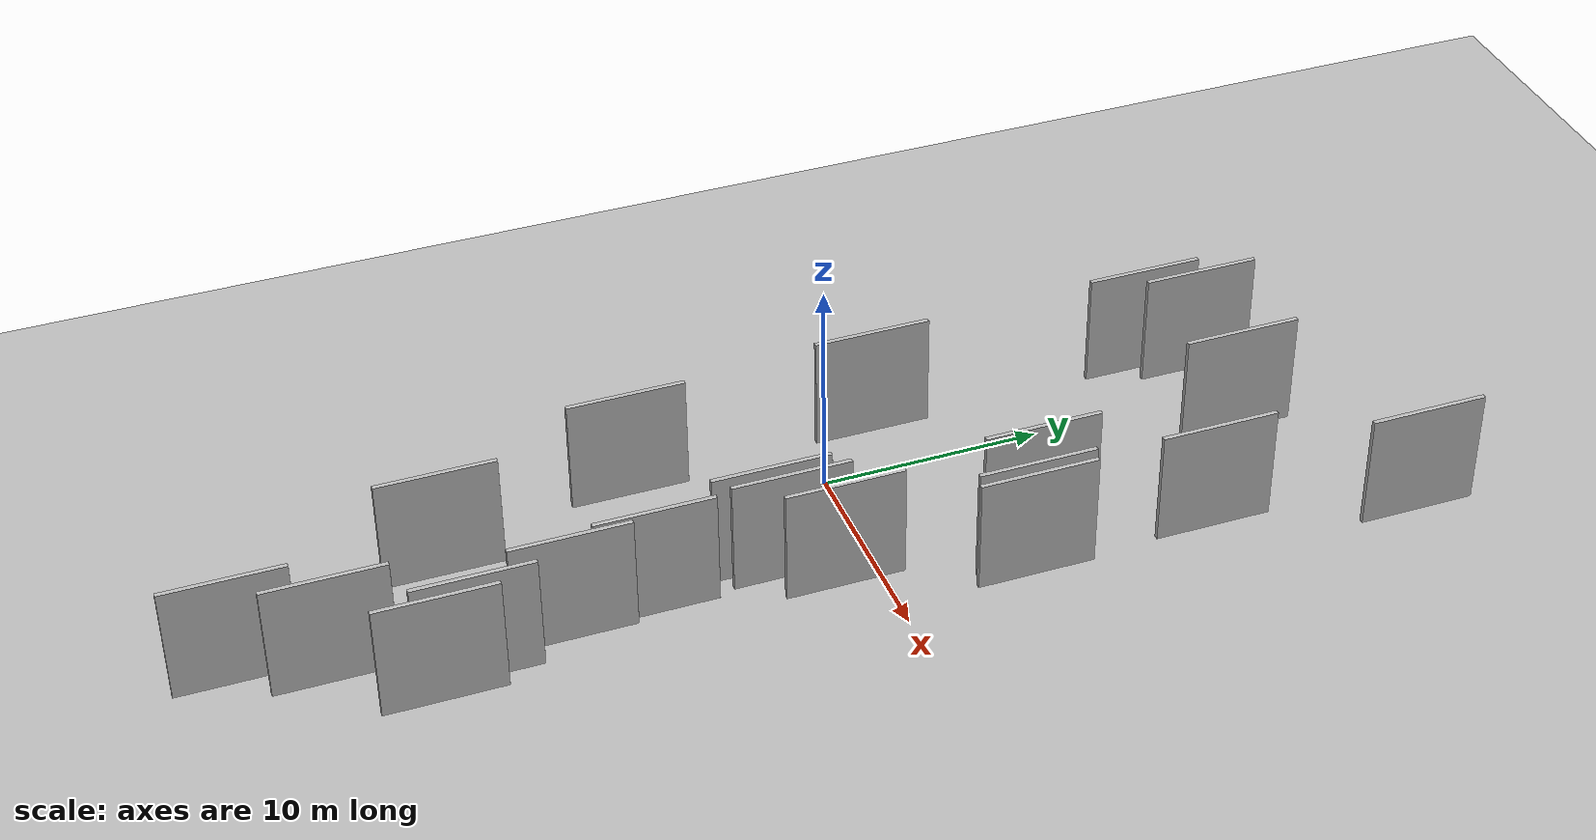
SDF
<?xml version="1.0" encoding="utf-8"?>

<sdf version="1.6">

   <world name="default">

      <gui fullscreen="0">

         <camera name="user_camera">

            <pose>-15 0 4.57585 0 0 0</pose>

            <view_controller>orbit</view_controller>

         </camera>

      </gui>

      <scene>

         <sky>

           <clouds>

             <speed>12</speed>

           </clouds>

         </sky>

         <ambient>0.4 0.4 0.4 1</ambient>

         <background>0.7 0.7 0.7 1</background>

         <shadows>1</shadows>

      </scene>

      <gravity>0 0 -9.8066</gravity>

      <magnetic_field>6e-06 2.3e-05 -4.2e-05</magnetic_field>

      <physics default="0" name="default_physics" type="ode">

         <ode>

            <solver>

               <type>quick</type>

               <iters>10</iters>

               <sor>1.0</sor>

               <use_dynamic_moi_rescaling>0</use_dynamic_moi_rescaling>

            </solver>

            <constraints>

               <cfm>0</cfm>

               <erp>0.2</erp>

               <contact_max_correcting_vel>100</contact_max_correcting_vel>

               <contact_surface_layer>0.001</contact_surface_layer>

            </constraints>

         </ode>

         <max_step_size>0.004</max_step_size>

         <real_time_factor>1</real_time_factor>

         <real_time_update_rate>250</real_time_update_rate>

      </physics>

      <light name="sun" type="directional">

         <cast_shadows>1</cast_shadows>

         <pose>0 0 10 0 0 0</pose>

         <diffuse>0.8 0.8 0.8 1</diffuse>

         <specular>0.2 0.2 0.2 1</specular>

         <attenuation>

            <range>1000</range>

            <constant>0.9</constant>

            <linear>0.01</linear>

            <quadratic>0.001</quadratic>

         </attenuation>

         <direction>-0.5 0.1 -0.9</direction>

      </light>

      <include>

         <name>ground_plane_1</name>

         <uri>model://HANNAS_ground_plane</uri>

         <pose>0 0 0  0 0 0</pose>

      </include>

      <include>

         <name>ground_plane_2</name>

         <uri>model://HANNAS_ground_plane</uri>

         <pose>100 0 0  0 0 0</pose>

      </include>

      <model name="HANNAS_wall_1">

         <static>1</static>

         <pose frame="">6.0862 -18.3670 5.0 0.000000 0.000000 1.570796</pose>

         <link name="link">

            <pose frame="">0 0 2.50 0 0 0</pose>

            <collision name="collision">

               <geometry>

                  <box>

                     <size>5.00 0.2 5.00</size>

                  </box>

               </geometry>

               <max_contacts>10</max_contacts>

               <surface>

                  <contact>

                     <ode/>

                  </contact>

                  <bounce/>

                  <friction>

                     <torsional>

                        <ode/>

                     </torsional>

                     <ode/>

                  </friction>

               </surface>

            </collision>

            <visual name="visual">

               <cast_shadows>0</cast_shadows>

               <geometry>

                  <box>

                     <size>5.00 0.2 5.00</size>

                  </box>

               </geometry>

               <material>

                  <script>

                     <uri>model://HANNAS_wall/materials/scripts</uri>

                     <uri>model://HANNAS_wall/materials/textures</uri>

                     <name>vrc/HANNAS_wall</name>

                  </script>

               </material>

            </visual>

            <self_collide>0</self_collide>

            <enable_wind>0</enable_wind>

            <kinematic>0</kinematic>

         </link>

      </model>

      <model name="HANNAS_wall_2">

         <static>1</static>

         <pose frame="">3.2298 0.9147 5.0 0.000000 0.000000 1.570796</pose>

         <link name="link">

            <pose frame="">0 0 2.50 0 0 0</pose>

            <collision name="collision">

               <geometry>

                  <box>

                     <size>5.00 0.2 5.00</size>

                  </box>

               </geometry>

               <max_contacts>10</max_contacts>

               <surface>

                  <contact>

                     <ode/>

                  </contact>

                  <bounce/>

                  <friction>

                     <torsional>

                        <ode/>

                     </torsional>

                     <ode/>

                  </friction>

               </surface>

            </collision>

            <visual name="visual">

               <cast_shadows>0</cast_shadows>

               <geometry>

                  <box>

                     <size>5.00 0.2 5.00</size>

                  </box>

               </geometry>

               <material>

                  <script>

                     <uri>model://HANNAS_wall/materials/scripts</uri>

                     <uri>model://HANNAS_wall/materials/textures</uri>

                     <name>vrc/HANNAS_wall</name>

                  </script>

               </material>

            </visual>

            <self_collide>0</self_collide>

            <enable_wind>0</enable_wind>

            <kinematic>0</kinematic>

         </link>

      </model>

      <model name="HANNAS_wall_3">

         <static>1</static>

         <pose frame="">10.7803 -23.8710 5.0 0.000000 0.000000 1.570796</pose>

         <link name="link">

            <pose frame="">0 0 2.50 0 0 0</pose>

            <collision name="collision">

               <geometry>

                  <box>

                     <size>5.00 0.2 5.00</size>

                  </box>

               </geometry>

               <max_contacts>10</max_contacts>

               <surface>

                  <contact>

                     <ode/>

                  </contact>

                  <bounce/>

                  <friction>

                     <torsional>

                        <ode/>

                     </torsional>

                     <ode/>

                  </friction>

               </surface>

            </collision>

            <visual name="visual">

               <cast_shadows>0</cast_shadows>

               <geometry>

                  <box>

                     <size>5.00 0.2 5.00</size>

                  </box>

               </geometry>

               <material>

                  <script>

                     <uri>model://HANNAS_wall/materials/scripts</uri>

                     <uri>model://HANNAS_wall/materials/textures</uri>

                     <name>vrc/HANNAS_wall</name>

                  </script>

               </material>

            </visual>

            <self_collide>0</self_collide>

            <enable_wind>0</enable_wind>

            <kinematic>0</kinematic>

         </link>

      </model>

      <model name="HANNAS_wall_4">

         <static>1</static>

         <pose frame="">8.5567 15.2434 5.0 0.000000 0.000000 1.570796</pose>

         <link name="link">

            <pose frame="">0 0 2.50 0 0 0</pose>

            <collision name="collision">

               <geometry>

                  <box>

                     <size>5.00 0.2 5.00</size>

                  </box>

               </geometry>

               <max_contacts>10</max_contacts>

               <surface>

                  <contact>

                     <ode/>

                  </contact>

                  <bounce/>

                  <friction>

                     <torsional>

                        <ode/>

                     </torsional>

                     <ode/>

                  </friction>

               </surface>

            </collision>

            <visual name="visual">

               <cast_shadows>0</cast_shadows>

               <geometry>

                  <box>

                     <size>5.00 0.2 5.00</size>

                  </box>

               </geometry>

               <material>

                  <script>

                     <uri>model://HANNAS_wall/materials/scripts</uri>

                     <uri>model://HANNAS_wall/materials/textures</uri>

                     <name>vrc/HANNAS_wall</name>

                  </script>

               </material>

            </visual>

            <self_collide>0</self_collide>

            <enable_wind>0</enable_wind>

            <kinematic>0</kinematic>

         </link>

      </model>

      <model name="HANNAS_wall_5">

         <static>1</static>

         <pose frame="">11.0155 -5.4281 5.0 0.000000 0.000000 1.570796</pose>

         <link name="link">

            <pose frame="">0 0 2.50 0 0 0</pose>

            <collision name="collision">

               <geometry>

                  <box>

                     <size>5.00 0.2 5.00</size>

                  </box>

               </geometry>

               <max_contacts>10</max_contacts>

               <surface>

                  <contact>

                     <ode/>

                  </contact>

                  <bounce/>

                  <friction>

                     <torsional>

                        <ode/>

                     </torsional>

                     <ode/>

                  </friction>

               </surface>

            </collision>

            <visual name="visual">

               <cast_shadows>0</cast_shadows>

               <geometry>

                  <box>

                     <size>5.00 0.2 5.00</size>

                  </box>

               </geometry>

               <material>

                  <script>

                     <uri>model://HANNAS_wall/materials/scripts</uri>

                     <uri>model://HANNAS_wall/materials/textures</uri>

                     <name>vrc/HANNAS_wall</name>

                  </script>

               </material>

            </visual>

            <self_collide>0</self_collide>

            <enable_wind>0</enable_wind>

            <kinematic>0</kinematic>

         </link>

      </model>

      <model name="HANNAS_wall_6">

         <static>1</static>

         <pose frame="">10.3265 -6.0208 5.0 0.000000 0.000000 1.570796</pose>

         <link name="link">

            <pose frame="">0 0 2.50 0 0 0</pose>

            <collision name="collision">

               <geometry>

                  <box>

                     <size>5.00 0.2 5.00</size>

                  </box>

               </geometry>

               <max_contacts>10</max_contacts>

               <surface>

                  <contact>

                     <ode/>

                  </contact>

                  <bounce/>

                  <friction>

                     <torsional>

                        <ode/>

                     </torsional>

                     <ode/>

                  </friction>

               </surface>

            </collision>

            <visual name="visual">

               <cast_shadows>0</cast_shadows>

               <geometry>

                  <box>

                     <size>5.00 0.2 5.00</size>

                  </box>

               </geometry>

               <material>

                  <script>

                     <uri>model://HANNAS_wall/materials/scripts</uri>

                     <uri>model://HANNAS_wall/materials/textures</uri>

                     <name>vrc/HANNAS_wall</name>

                  </script>

               </material>

            </visual>

            <self_collide>0</self_collide>

            <enable_wind>0</enable_wind>

            <kinematic>0</kinematic>

         </link>

      </model>

      <model name="HANNAS_wall_7">

         <static>1</static>

         <pose frame="">3.9384 15.5971 5.0 0.000000 0.000000 1.570796</pose>

         <link name="link">

            <pose frame="">0 0 2.50 0 0 0</pose>

            <collision name="collision">

               <geometry>

                  <box>

                     <size>5.00 0.2 5.00</size>

                  </box>

               </geometry>

               <max_contacts>10</max_contacts>

               <surface>

                  <contact>

                     <ode/>

                  </contact>

                  <bounce/>

                  <friction>

                     <torsional>

                        <ode/>

                     </torsional>

                     <ode/>

                  </friction>

               </surface>

            </collision>

            <visual name="visual">

               <cast_shadows>0</cast_shadows>

               <geometry>

                  <box>

                     <size>5.00 0.2 5.00</size>

                  </box>

               </geometry>

               <material>

                  <script>

                     <uri>model://HANNAS_wall/materials/scripts</uri>

                     <uri>model://HANNAS_wall/materials/textures</uri>

                     <name>vrc/HANNAS_wall</name>

                  </script>

               </material>

            </visual>

            <self_collide>0</self_collide>

            <enable_wind>0</enable_wind>

            <kinematic>0</kinematic>

         </link>

      </model>

      <model name="HANNAS_wall_8">

         <static>1</static>

         <pose frame="">13.7003 3.8377 5.0 0.000000 0.000000 1.570796</pose>

         <link name="link">

            <pose frame="">0 0 2.50 0 0 0</pose>

            <collision name="collision">

               <geometry>

                  <box>

                     <size>5.00 0.2 5.00</size>

                  </box>

               </geometry>

               <max_contacts>10</max_contacts>

               <surface>

                  <contact>

                     <ode/>

                  </contact>

                  <bounce/>

                  <friction>

                     <torsional>

                        <ode/>

                     </torsional>

                     <ode/>

                  </friction>

               </surface>

            </collision>

            <visual name="visual">

               <cast_shadows>0</cast_shadows>

               <geometry>

                  <box>

                     <size>5.00 0.2 5.00</size>

                  </box>

               </geometry>

               <material>

                  <script>

                     <uri>model://HANNAS_wall/materials/scripts</uri>

                     <uri>model://HANNAS_wall/materials/textures</uri>

                     <name>vrc/HANNAS_wall</name>

                  </script>

               </material>

            </visual>

            <self_collide>0</self_collide>

            <enable_wind>0</enable_wind>

            <kinematic>0</kinematic>

         </link>

      </model>

      <model name="HANNAS_wall_9">

         <static>1</static>

         <pose frame="">11.6025 4.9767 5.0 0.000000 0.000000 1.570796</pose>

         <link name="link">

            <pose frame="">0 0 2.50 0 0 0</pose>

            <collision name="collision">

               <geometry>

                  <box>

                     <size>5.00 0.2 5.00</size>

                  </box>

               </geometry>

               <max_contacts>10</max_contacts>

               <surface>

                  <contact>

                     <ode/>

                  </contact>

                  <bounce/>

                  <friction>

                     <torsional>

                        <ode/>

                     </torsional>

                     <ode/>

                  </friction>

               </surface>

            </collision>

            <visual name="visual">

               <cast_shadows>0</cast_shadows>

               <geometry>

                  <box>

                     <size>5.00 0.2 5.00</size>

                  </box>

               </geometry>

               <material>

                  <script>

                     <uri>model://HANNAS_wall/materials/scripts</uri>

                     <uri>model://HANNAS_wall/materials/textures</uri>

                     <name>vrc/HANNAS_wall</name>

                  </script>

               </material>

            </visual>

            <self_collide>0</self_collide>

            <enable_wind>0</enable_wind>

            <kinematic>0</kinematic>

         </link>

      </model>

      <model name="HANNAS_wall_10">

         <static>1</static>

         <pose frame="">11.6328 -14.5725 5.0 0.000000 0.000000 1.570796</pose>

         <link name="link">

            <pose frame="">0 0 2.50 0 0 0</pose>

            <collision name="collision">

               <geometry>

                  <box>

                     <size>5.00 0.2 5.00</size>

                  </box>

               </geometry>

               <max_contacts>10</max_contacts>

               <surface>

                  <contact>

                     <ode/>

                  </contact>

                  <bounce/>

                  <friction>

                     <torsional>

                        <ode/>

                     </torsional>

                     <ode/>

                  </friction>

               </surface>

            </collision>

            <visual name="visual">

               <cast_shadows>0</cast_shadows>

               <geometry>

                  <box>

                     <size>5.00 0.2 5.00</size>

                  </box>

               </geometry>

               <material>

                  <script>

                     <uri>model://HANNAS_wall/materials/scripts</uri>

                     <uri>model://HANNAS_wall/materials/textures</uri>

                     <name>vrc/HANNAS_wall</name>

                  </script>

               </material>

            </visual>

            <self_collide>0</self_collide>

            <enable_wind>0</enable_wind>

            <kinematic>0</kinematic>

         </link>

      </model>

      <model name="HANNAS_wall_11">

         <static>1</static>

         <pose frame="">14.0752 11.5162 5.0 0.000000 0.000000 1.570796</pose>

         <link name="link">

            <pose frame="">0 0 2.50 0 0 0</pose>

            <collision name="collision">

               <geometry>

                  <box>

                     <size>5.00 0.2 5.00</size>

                  </box>

               </geometry>

               <max_contacts>10</max_contacts>

               <surface>

                  <contact>

                     <ode/>

                  </contact>

                  <bounce/>

                  <friction>

                     <torsional>

                        <ode/>

                     </torsional>

                     <ode/>

                  </friction>

               </surface>

            </collision>

            <visual name="visual">

               <cast_shadows>0</cast_shadows>

               <geometry>

                  <box>

                     <size>5.00 0.2 5.00</size>

                  </box>

               </geometry>

               <material>

                  <script>

                     <uri>model://HANNAS_wall/materials/scripts</uri>

                     <uri>model://HANNAS_wall/materials/textures</uri>

                     <name>vrc/HANNAS_wall</name>

                  </script>

               </material>

            </visual>

            <self_collide>0</self_collide>

            <enable_wind>0</enable_wind>

            <kinematic>0</kinematic>

         </link>

      </model>

      <model name="HANNAS_wall_12">

         <static>1</static>

         <pose frame="">13.3303 -20.2486 5.0 0.000000 0.000000 1.570796</pose>

         <link name="link">

            <pose frame="">0 0 2.50 0 0 0</pose>

            <collision name="collision">

               <geometry>

                  <box>

                     <size>5.00 0.2 5.00</size>

                  </box>

               </geometry>

               <max_contacts>10</max_contacts>

               <surface>

                  <contact>

                     <ode/>

                  </contact>

                  <bounce/>

                  <friction>

                     <torsional>

                        <ode/>

                     </torsional>

                     <ode/>

                  </friction>

               </surface>

            </collision>

            <visual name="visual">

               <cast_shadows>0</cast_shadows>

               <geometry>

                  <box>

                     <size>5.00 0.2 5.00</size>

                  </box>

               </geometry>

               <material>

                  <script>

                     <uri>model://HANNAS_wall/materials/scripts</uri>

                     <uri>model://HANNAS_wall/materials/textures</uri>

                     <name>vrc/HANNAS_wall</name>

                  </script>

               </material>

            </visual>

            <self_collide>0</self_collide>

            <enable_wind>0</enable_wind>

            <kinematic>0</kinematic>

         </link>

      </model>

      <model name="HANNAS_wall_13">

         <static>1</static>

         <pose frame="">3.0769 13.3570 5.0 0.000000 0.000000 1.570796</pose>

         <link name="link">

            <pose frame="">0 0 2.50 0 0 0</pose>

            <collision name="collision">

               <geometry>

                  <box>

                     <size>5.00 0.2 5.00</size>

                  </box>

               </geometry>

               <max_contacts>10</max_contacts>

               <surface>

                  <contact>

                     <ode/>

                  </contact>

                  <bounce/>

                  <friction>

                     <torsional>

                        <ode/>

                     </torsional>

                     <ode/>

                  </friction>

               </surface>

            </collision>

            <visual name="visual">

               <cast_shadows>0</cast_shadows>

               <geometry>

                  <box>

                     <size>5.00 0.2 5.00</size>

                  </box>

               </geometry>

               <material>

                  <script>

                     <uri>model://HANNAS_wall/materials/scripts</uri>

                     <uri>model://HANNAS_wall/materials/textures</uri>

                     <name>vrc/HANNAS_wall</name>

                  </script>

               </material>

            </visual>

            <self_collide>0</self_collide>

            <enable_wind>0</enable_wind>

            <kinematic>0</kinematic>

         </link>

      </model>

      <model name="HANNAS_wall_14">

         <static>1</static>

         <pose frame="">14.3510 3.6244 5.0 0.000000 0.000000 1.570796</pose>

         <link name="link">

            <pose frame="">0 0 2.50 0 0 0</pose>

            <collision name="collision">

               <geometry>

                  <box>

                     <size>5.00 0.2 5.00</size>

                  </box>

               </geometry>

               <max_contacts>10</max_contacts>

               <surface>

                  <contact>

                     <ode/>

                  </contact>

                  <bounce/>

                  <friction>

                     <torsional>

                        <ode/>

                     </torsional>

                     <ode/>

                  </friction>

               </surface>

            </collision>

            <visual name="visual">

               <cast_shadows>0</cast_shadows>

               <geometry>

                  <box>

                     <size>5.00 0.2 5.00</size>

                  </box>

               </geometry>

               <material>

                  <script>

                     <uri>model://HANNAS_wall/materials/scripts</uri>

                     <uri>model://HANNAS_wall/materials/textures</uri>

                     <name>vrc/HANNAS_wall</name>

                  </script>

               </material>

            </visual>

            <self_collide>0</self_collide>

            <enable_wind>0</enable_wind>

            <kinematic>0</kinematic>

         </link>

      </model>

      <model name="HANNAS_wall_15">

         <static>1</static>

         <pose frame="">3.7795 -9.9066 5.0 0.000000 0.000000 1.570796</pose>

         <link name="link">

            <pose frame="">0 0 2.50 0 0 0</pose>

            <collision name="collision">

               <geometry>

                  <box>

                     <size>5.00 0.2 5.00</size>

                  </box>

               </geometry>

               <max_contacts>10</max_contacts>

               <surface>

                  <contact>

                     <ode/>

                  </contact>

                  <bounce/>

                  <friction>

                     <torsional>

                        <ode/>

                     </torsional>

                     <ode/>

                  </friction>

               </surface>

            </collision>

            <visual name="visual">

               <cast_shadows>0</cast_shadows>

               <geometry>

                  <box>

                     <size>5.00 0.2 5.00</size>

                  </box>

               </geometry>

               <material>

                  <script>

                     <uri>model://HANNAS_wall/materials/scripts</uri>

                     <uri>model://HANNAS_wall/materials/textures</uri>

                     <name>vrc/HANNAS_wall</name>

                  </script>

               </material>

            </visual>

            <self_collide>0</self_collide>

            <enable_wind>0</enable_wind>

            <kinematic>0</kinematic>

         </link>

      </model>

      <model name="HANNAS_wall_16">

         <static>1</static>

         <pose frame="">16.0706 19.7544 5.0 0.000000 0.000000 1.570796</pose>

         <link name="link">

            <pose frame="">0 0 2.50 0 0 0</pose>

            <collision name="collision">

               <geometry>

                  <box>

                     <size>5.00 0.2 5.00</size>

                  </box>

               </geometry>

               <max_contacts>10</max_contacts>

               <surface>

                  <contact>

                     <ode/>

                  </contact>

                  <bounce/>

                  <friction>

                     <torsional>

                        <ode/>

                     </torsional>

                     <ode/>

                  </friction>

               </surface>

            </collision>

            <visual name="visual">

               <cast_shadows>0</cast_shadows>

               <geometry>

                  <box>

                     <size>5.00 0.2 5.00</size>

                  </box>

               </geometry>

               <material>

                  <script>

                     <uri>model://HANNAS_wall/materials/scripts</uri>

                     <uri>model://HANNAS_wall/materials/textures</uri>

                     <name>vrc/HANNAS_wall</name>

                  </script>

               </material>

            </visual>

            <self_collide>0</self_collide>

            <enable_wind>0</enable_wind>

            <kinematic>0</kinematic>

         </link>

      </model>

      <model name="HANNAS_wall_17">

         <static>1</static>

         <pose frame="">12.6148 -18.6347 5.0 0.000000 0.000000 1.570796</pose>

         <link name="link">

            <pose frame="">0 0 2.50 0 0 0</pose>

            <collision name="collision">

               <geometry>

                  <box>

                     <size>5.00 0.2 5.00</size>

                  </box>

               </geometry>

               <max_contacts>10</max_contacts>

               <surface>

                  <contact>

                     <ode/>

                  </contact>

                  <bounce/>

                  <friction>

                     <torsional>

                        <ode/>

                     </torsional>

                     <ode/>

                  </friction>

               </surface>

            </collision>

            <visual name="visual">

               <cast_shadows>0</cast_shadows>

               <geometry>

                  <box>

                     <size>5.00 0.2 5.00</size>

                  </box>

               </geometry>

               <material>

                  <script>

                     <uri>model://HANNAS_wall/materials/scripts</uri>

                     <uri>model://HANNAS_wall/materials/textures</uri>

                     <name>vrc/HANNAS_wall</name>

                  </script>

               </material>

            </visual>

            <self_collide>0</self_collide>

            <enable_wind>0</enable_wind>

            <kinematic>0</kinematic>

         </link>

      </model>

      <model name="HANNAS_wall_18">

         <static>1</static>

         <pose frame="">12.3109 -3.6896 5.0 0.000000 0.000000 1.570796</pose>

         <link name="link">

            <pose frame="">0 0 2.50 0 0 0</pose>

            <collision name="collision">

               <geometry>

                  <box>

                     <size>5.00 0.2 5.00</size>

                  </box>

               </geometry>

               <max_contacts>10</max_contacts>

               <surface>

                  <contact>

                     <ode/>

                  </contact>

                  <bounce/>

                  <friction>

                     <torsional>

                        <ode/>

                     </torsional>

                     <ode/>

                  </friction>

               </surface>

            </collision>

            <visual name="visual">

               <cast_shadows>0</cast_shadows>

               <geometry>

                  <box>

                     <size>5.00 0.2 5.00</size>

                  </box>

               </geometry>

               <material>

                  <script>

                     <uri>model://HANNAS_wall/materials/scripts</uri>

                     <uri>model://HANNAS_wall/materials/textures</uri>

                     <name>vrc/HANNAS_wall</name>

                  </script>

               </material>

            </visual>

            <self_collide>0</self_collide>

            <enable_wind>0</enable_wind>

            <kinematic>0</kinematic>

         </link>

      </model>

      <model name="HANNAS_wall_19">

         <static>1</static>

         <pose frame="">9.5389 -27.4185 5.0 0.000000 0.000000 1.570796</pose>

         <link name="link">

            <pose frame="">0 0 2.50 0 0 0</pose>

            <collision name="collision">

               <geometry>

                  <box>

                     <size>5.00 0.2 5.00</size>

                  </box>

               </geometry>

               <max_contacts>10</max_contacts>

               <surface>

                  <contact>

                     <ode/>

                  </contact>

                  <bounce/>

                  <friction>

                     <torsional>

                        <ode/>

                     </torsional>

                     <ode/>

                  </friction>

               </surface>

            </collision>

            <visual name="visual">

               <cast_shadows>0</cast_shadows>

               <geometry>

                  <box>

                     <size>5.00 0.2 5.00</size>

                  </box>

               </geometry>

               <material>

                  <script>

                     <uri>model://HANNAS_wall/materials/scripts</uri>

                     <uri>model://HANNAS_wall/materials/textures</uri>

                     <name>vrc/HANNAS_wall</name>

                  </script>

               </material>

            </visual>

            <self_collide>0</self_collide>

            <enable_wind>0</enable_wind>

            <kinematic>0</kinematic>

         </link>

      </model>

      <model name="HANNAS_wall_20">

         <static>1</static>

         <pose frame="">11.3097 -11.1087 5.0 0.000000 0.000000 1.570796</pose>

         <link name="link">

            <pose frame="">0 0 2.50 0 0 0</pose>

            <collision name="collision">

               <geometry>

                  <box>

                     <size>5.00 0.2 5.00</size>

                  </box>

               </geometry>

               <max_contacts>10</max_contacts>

               <surface>

                  <contact>

                     <ode/>

                  </contact>

                  <bounce/>

                  <friction>

                     <torsional>

                        <ode/>

                     </torsional>

                     <ode/>

                  </friction>

               </surface>

            </collision>

            <visual name="visual">

               <cast_shadows>0</cast_shadows>

               <geometry>

                  <box>

                     <size>5.00 0.2 5.00</size>

                  </box>

               </geometry>

               <material>

                  <script>

                     <uri>model://HANNAS_wall/materials/scripts</uri>

                     <uri>model://HANNAS_wall/materials/textures</uri>

                     <name>vrc/HANNAS_wall</name>

                  </script>

               </material>

            </visual>

            <self_collide>0</self_collide>

            <enable_wind>0</enable_wind>

            <kinematic>0</kinematic>

         </link>

      </model>

   </world>

</sdf>

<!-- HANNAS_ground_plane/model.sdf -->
<sdf version="1.4">
<model name="HANNAS_ground_plane">
  <static>true</static>
    <link name="link">
      <collision name="collision">
        <geometry>
          <plane>
            <normal>0 0 1</normal>
            <size>1000 1000</size>
          </plane>
        </geometry>
        <surface>
          <friction>
            <ode>
              <mu>100</mu>
              <mu2>50</mu2>
            </ode>
          </friction>
        </surface>
      </collision>
      <visual name="visual">
        <cast_shadows>false</cast_shadows>
        <geometry>
          <plane>
            <normal>0 0 1</normal>
            <size>1000 1000</size>
          </plane>
        </geometry>
        <material>
          <script>
            <uri>model://HANNAS_ground_plane/materials/scripts/HANNAS_ground_plane.material</uri>
	    <uri>model://HANNAS_ground_plane/materials/textures</uri>
            <name>HANNASGroundPlane/Image</name>
          </script>
        </material>
      </visual>
    </link>
  </model>
</sdf>
